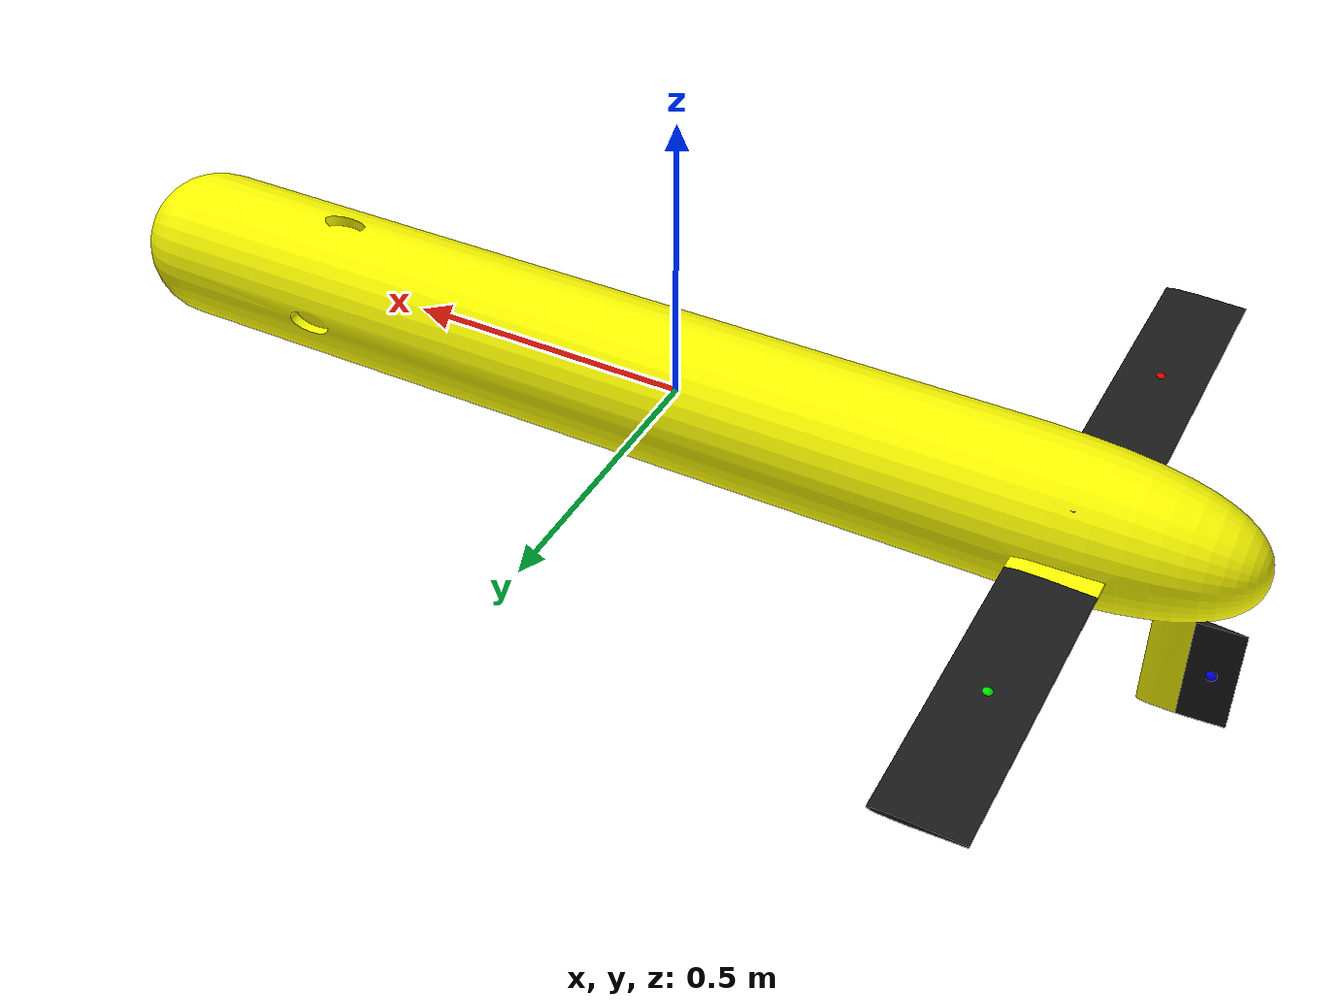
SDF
<?xml version="1.0"?>
<sdf version="1.7">
  <model name="glider_nautilus">

    <static>false</static>

    <!-- BASE LINK -->

    <link name="base_link">
      <inertial>

        <!-- Pose of the Centre of Mass in the NED base_link frame
             This comes from the Technical_Details spreadsheet (22.04.)
             without the contribution from ACU and oil mass -->

        <pose>0.066 0 0.013 0 0 0</pose>

        <inertia>
          <ixx>0.569665165</ixx>
          <ixy>0.014586839</ixy>
          <ixz>-0.135434148</ixz>
          <iyy>7.792</iyy>
          <iyz>0.003389589</iyz>
          <izz>7.738</izz>
        </inertia>

        <fluid_added_mass>
          <xx>5.30023995</xx>
          <yy>98.529516</yy>
          <zz>110.543023</zz>
          <pp>1.46943124</pp>
          <qq>20.2676439</qq>
          <rr>16.1139805</rr>
        </fluid_added_mass>

        <!-- Mass from the Technical_Details spreadsheet
             This does not include:
             * Movable ACU masses
             * Oil mass -->

        <mass>44.637</mass>

      </inertial>

      <visual name="base_link_visual">
        <pose>0 0 0 0 0 0</pose>
        <geometry>
          <mesh>
            <uri>model://meshes/glider_nautilus/nautilus_glider_nw_v04.dae</uri>
          </mesh>
        </geometry>
        <material>
          <ambient>0.7 0. 0 0.5</ambient>
          <diffuse>1 1 0 1</diffuse>
          <specular>0.7 0.7 0 0.5</specular>
        </material>
      </visual>

      <collision name="base_link_collision">
        <pose>0.0 0 0 0 0 0</pose>
        <geometry>
          <box>
            <!-- x y and z dimensions of the box (refers to base_link coordinates) -->
            <size>1.007723 0.232517 0.232517</size>
          </box>
        </geometry>
      </collision>

      <!-- Box visualising where the bouyant volume of the
           hull is. Not functional, simply an optional sanity check.
           Uncomment to show. -->

    </link>

    <plugin
      filename="gz-sim-hydrodynamics-system"
      name="gz::sim::systems::Hydrodynamics">
      <link_name>base_link</link_name>
      <water_density>1025.0</water_density>
      <!-- Added mass -->
      <xDotU>0</xDotU>
      <yDotV>0</yDotV>
      <zDotW>0</zDotW>
      <kDotP>0</kDotP>
      <mDotQ>0</mDotQ>
      <nDotR>0</nDotR>

      <!-- Linear Drag Coefficients -->
      <!-- diagonal terms -->
      <xU>-108</xU>
      <yV>-8</yV>
      <zW>-162</zW>
      <kP>-13</kP>
      <mQ>-32</mQ>
      <nR>-20</nR>
      <!-- cross terms -->

      <!-- Quadratic Drag Coefficients -->
      <xUabsU>0</xUabsU>
      <yVabsV>0</yVabsV>
      <zWabsW>0</zWabsW>
      <kPabsP>0</kPabsP>
      <mQabsQ>0</mQabsQ>
      <nRabsR>0</nRabsR>
    </plugin>

    <!-- TRIMMING BOW -->

    <!-- A rigidly attached link providing the additional buoyancy
         or mass needed to make the glider float correctly -->

    <joint name="trimming_bow_joint" type="fixed">
      <pose>0.65 0 0 0 0 0</pose>
      <parent>base_link</parent>
      <child>trimming_bow</child>0 0 0
    </joint>

    <link name="trimming_bow">

      <pose>0.65 0 0 0 0 0</pose>

      <collision name="bow_trimming_foam_collision">
        <pose>0 0 0 0 0 0</pose>
        <geometry>
          <box>
            <size>0.065 0.18 0.18</size>
          </box>
        </geometry>
      </collision>

      <visual name="bow_trimming_foam_visual">
        <geometry>
          <box>
            <size>0.065 0.15 0.15</size>
          </box>
        </geometry>
        <material>
          <ambient>0 0 1 0.8</ambient>
          <diffuse>0 0 1 0.8</diffuse>
          <specular>0 0 1 0.8</specular>
        </material>
      </visual>

    </link>

    <!-- TRIMMING STERN -->

    <!-- A rigidly attached link providing the additional buoyancy
         or mass needed to make the glider float correctly. Uncomment
         and add mass / a collision geometry to activate. -->

    <joint name="trimming_stern_joint" type="fixed">
      <pose>-0.7 0 0 0 0 0</pose>
      <parent>base_link</parent>
      <child>trimming_stern</child>
    </joint>

    <link name="trimming_stern">

      <collision name="stern_trimming_foam_collision">
        <geometry>
          <box>
            <size>0.015 0.18 0.18</size>
          </box>
        </geometry>
      </collision>

      <pose>-0.7 0 0 0 0 0</pose>

      <inertial>
        <mass>0.01</mass>
      </inertial>

      <visual name="stern_trimming_foam_visual">
        <geometry>
          <box>
            <size>0.015 0.18 0.18</size>
          </box>
        </geometry>
        <material>
          <ambient>0 0 1 0.8</ambient>
          <diffuse>0 0 1 0.8</diffuse>
          <specular>0 0 1 0.8</specular>
        </material>
      </visual>

    </link>

    <!-- LEFT FIN -->

    <link name="LeftFin_link">
      <!-- Frame for aerodynamic forces of left wing.
           For now simply rest at base link -->

      <visual name="LeftFin_visual">
        <pose>0 0 0 0 0 0</pose>
        <geometry>
          <mesh>
            <uri>model://meshes/glider_nautilus/nautilus_glider_wing_l_v04.dae</uri>
          </mesh>
        </geometry>
        <material>
          <ambient>0.1 0.1 0.1 0.9</ambient>
          <diffuse>0.1 0.1 0.1 1</diffuse>
          <specular>0 0 0 0.9</specular>
        </material>
      </visual>

      <!-- The following visual element is for a sanity check on the
           centre of pressure passed to the lift drag plugin. Insert
           the same position in the pose tag. -->
      <visual name="centre_of_pressure_marker">
        <pose>-0.7 -0.408 0 0 0 0</pose>
        <geometry>
          <sphere>
            <radius>0.01</radius>
          </sphere>
        </geometry>
        <material>
          <ambient>0.9 0 0 0.9</ambient>
          <diffuse>0.9 0 0 0.9</diffuse>
          <specular>0 0 0 0.9</specular>
        </material>
      </visual>

    </link>

    <joint name="LeftFin_joint" type="fixed">
      <pose>0 0 0 0 0 0</pose>
      <parent>base_link</parent>
      <child>LeftFin_link</child>
    </joint>

    <plugin
      filename="gz-sim-lift-drag-system"
      name="gz::sim::systems::LiftDrag">
      <air_density>1025</air_density>
      <cla>4.13</cla>
      <cla_stall>-1.1</cla_stall>
      <cda>0.2</cda>
      <cda_stall>0.03</cda_stall>
      <alpha_stall>0.17</alpha_stall>
      <a0>0</a0>
      <area>0.0725</area>
      <upward>0 0 -1</upward>
      <forward>1 0 0</forward>
      <link_name>LeftFin_link</link_name>
      <!-- cp determines the centre of pressure in the link frame,
           i.e. wher the aerodynamic forces are applied -->
      <cp>-0.7 -0.408 0</cp>
    </plugin>

    <!-- RIGHT FIN -->

    <link name="RightFin_link">

      <visual name="RightFin_visual">
        <pose>0 0 0 0 0 0</pose>
        <geometry>
          <mesh>
            <uri>model://meshes/glider_nautilus/nautilus_glider_wing_r_v04.dae</uri>
          </mesh>
        </geometry>
        <material>
          <ambient>0.1 0.1 0.1 0.9</ambient>
          <diffuse>0.1 0.1 0.1 1</diffuse>
          <specular>0 0 0 0.9</specular>
        </material>
      </visual>

      <!-- The following visual element is for a sanity check on the
           centre of pressure passed to the lift drag plugin. Insert
           the same position in the pose tag. -->
      <visual name="centre_of_pressure_marker">
        <pose>-0.7 0.408  0 0 0 0</pose>
        <geometry>
          <sphere>
            <radius>0.01</radius>
          </sphere>
        </geometry>
        <material>
          <ambient>0 0.9 0 0.9</ambient>
          <diffuse>0 0.9 0 0.9</diffuse>
          <specular>0 0 0 0.9</specular>
        </material>
      </visual>

    </link>

    <joint name="RightFin_joint" type="fixed">
      <pose>0 0 0 0 0 0</pose>
      <parent>base_link</parent>
      <child>RightFin_link</child>
    </joint>

    <plugin
      filename="gz-sim-lift-drag-system"
      name="gz::sim::systems::LiftDrag">
      <air_density>1025</air_density>
      <cla>4.13</cla>
      <cla_stall>-1.1</cla_stall>
      <cda>0.2</cda>
      <cda_stall>0.03</cda_stall>
      <alpha_stall>0.17</alpha_stall>
      <a0>0</a0>
      <area>0.0725</area>
      <upward>0 0 -1</upward>
      <forward>1 0 0</forward>
      <link_name>RightFin_link</link_name>
      <!-- cp determines the centre of pressure in the link frame,
           i.e. wher the aerodynamic forces are applied -->
      <cp>-0.7 0.408  0</cp>
    </plugin>

    <!-- TOP RUDDER -->

    <!-- Top rudder should be movable. First define this joint that
         the rudder's axis of rotation passes through -->

    <joint name="TopRudder_joint" type="fixed">
      <pose relative_to="base_link">-0.899156 0 -0.119 0 0 0</pose>
      <parent>base_link</parent>
      <child>TopRudder_link</child>
    </joint>

    <link name="TopRudder_link">

      <!-- Link (ie rudder body) has its coordinate system right
           on the rudder joint -->

      <pose relative_to="TopRudder_joint">0 0 0 0 0 0</pose>

      <!-- Integrates the mesh files of the rudder -->
      <visual name="Rudder_visual">
        <geometry>
          <mesh>
            <uri>model://meshes/glider_nautilus/nautilus_glider_rudder_v05.dae</uri>
          </mesh>
        </geometry>
        <material>
          <ambient>0.1 0.1 0.1 0.9</ambient>
          <diffuse>0.1 0.1 0.1 1</diffuse>
          <specular>0 0 0 0.9</specular>
        </material>
      </visual>

      <!-- The following visual element is for a sanity check on the
           centre of pressure passed to the lift drag plugin. Insert
           the same position in the pose tag. -->
      <visual name="centre_of_pressure_marker">
        <!-- Pose of the 'centre of pressure' in the local coordinates
             of the TopRudder_link, also a NED coordinate system -->
        <pose relative_to="TopRudder_link">-0.04 0 -0.1 0 0 0</pose>
        <geometry>
          <sphere>
            <radius>0.01</radius>
          </sphere>
        </geometry>
        <material>
          <ambient>0 0 0.9 0.9</ambient>
          <diffuse>0 0 0.9 0.9</diffuse>
          <specular>0 0 0 0.9</specular>
        </material>
      </visual>

    </link>

    <!-- Started to implement a movable rudder -->

    <!-- 0.5 was the initial set point of the PID position
     controller for the rudder -->

    <plugin
      filename="gz-sim-joint-state-publisher-system"
      name="gz::sim::systems::JointStatePublisher">
      <joint_name>TopRudder_joint</joint_name>
      <update_rate>2</update_rate>
    </plugin>

    <plugin
      filename="gz-sim-lift-drag-system"
      name="gz::sim::systems::LiftDrag">
      <air_density>1025</air_density>
      <cla>4.13</cla>
      <cla_stall>-1.1</cla_stall>
      <cda>0.2</cda>
      <cda_stall>0.03</cda_stall>
      <alpha_stall>0.17</alpha_stall>
      <a0>0</a0>
      <area>0.0244</area>
      <upward>0 1 0</upward>
      <forward>1 0 0</forward>
      <link_name>TopRudder_link</link_name>
      <cp>-0.04 0 -0.1</cp>
    </plugin>

    <!-- BLADDER -->

    <link name="bladder_link">
      <!-- Pose of bladder link in base link frame-->
      <pose>0.6 0 0 0 0 0</pose>
      <visual name="bladder_link_visual">
        <geometry>
          <sphere>
            <radius>0.05</radius>
          </sphere>
        </geometry>
        <material>
          <ambient>0 0 1 1</ambient>
          <diffuse>0 0 1 0.5</diffuse>
          <specular>0 0 1 0.5</specular>
        </material>
      </visual>
    </link>

    <joint name="bladder_joint" type="fixed">
      <pose>0 0 0 0 0 0</pose>
      <parent>base_link</parent>
      <child>bladder_link</child>
    </joint>

    <!-- OIL MASS -->

    <link name="oil_weight_link">
      <!--Oil positioned in the middle between the
      tank and the bladder. Static. Position in base_link coord-->
      <pose>0.4125 0 0.018 0 0 0</pose>
      <visual name="oil_weight_marker">
        <pose>0 0 0 0 0 0</pose>
        <geometry>
          <sphere>
            <radius>0.01</radius>
          </sphere>
        </geometry>
      </visual>
      <inertial>
        <mass>2.1825</mass>
      </inertial>
    </link>

    <joint name="oil_weigth_joint" type="fixed">
      <pose>0 0 0 0 0 0</pose>
      <parent>base_link</parent>
      <child>oil_weight_link</child>
    </joint>

    <plugin
      filename="gz-sim-buoyancy-engine-system"
      name="gz::sim::systems::BuoyancyEngine">
      <link_name>bladder_link</link_name>
      <max_inflation_rate>0.0001</max_inflation_rate>
      <min_volume>0.0</min_volume>
      <max_volume>0.0025</max_volume>engine
      <neutral_volume>0.0</neutral_volume>
      <default_volume>0.00125</default_volume>
      <fluid_density>1025.0</fluid_density>
      <surface>0</surface>
      <namespace>glider_nautilus</namespace>
    </plugin>

    <!-- IMU -->

    <link name="imu_link">
      <inertial>
        <pose>0 0 0 0 0 0</pose>
        <inertia>
          <ixx>0.00001</ixx>
          <ixy>0.0</ixy>
          <ixz>0.0</ixz>
          <iyy>0.00001</iyy>
          <iyz>0.0</iyz>
          <izz>0.00001</izz>
        </inertia>
      </inertial>
      <sensor name="imu_sensor" type="imu">
        <always_on>true</always_on>
        <update_rate>50.0</update_rate>
        <topic>/model/glider_nautilus/imu</topic>
      </sensor>
    </link>

    <joint name="imu_joint" type="fixed">
      <pose>0 0 0 0 0 0</pose>
      <parent>base_link</parent>
      <child>imu_link</child>
    </joint>

    <plugin
      filename="gz-sim-imu-system"
      name="gz::sim::systems::Imu">
    </plugin>

    <!-- BATTERY -->

    <link name='battery_link'>
      <!-- Inertial properties of static battery accounted for in the
           inertial properties of the base link  -->
      <battery name='battery'>
        <voltage>4.2</voltage>
      </battery>
    </link>

    <joint name='battery_joint' type='fixed'>
      <pose>0 0 0 0 0 0</pose>
      <parent>base_link</parent>
      <child>battery_link</child>
    </joint>

    <!-- ACU -->

    <!-- PITCH ACU -->

    <link name='acu_tilt_link'>

      <!-- Pitch ACU weight starts in the middle -->
      <pose>-0.32525 0 -0.0438 0 0 0</pose>

      <inertial>
        <mass>1.83</mass>
        <inertia>
          <ixx>0.05</ixx>
          <ixy>0</ixy>
          <ixz>0</ixz>
          <iyy>0.05</iyy>
          <iyz>0</iyz>
          <izz>0.05</izz>
        </inertia>
      </inertial>

      <!-- Marker for debugging pitch ACU mass position -->
      <visual name="CM_pitch_ACU_marker">
        <geometry>
          <sphere>
            <radius>0.01</radius>
          </sphere>
        </geometry>
        <material>
          <ambient>0.9 0 0 0.9</ambient>
          <diffuse>0.9 0 0 0.9</diffuse>
          <specular>0 0 0 0.9</specular>
        </material>
      </visual>
    </link>

    <joint name='acu_tilt_joint' type='prismatic'>
      <!-- Updated according to spreadsheet on 22.04. -->
      <pose>-0.385 0 -0.0438 0 0 0</pose>
      <parent>base_link</parent>
      <child>acu_tilt_link</child>
      <axis>
        <xyz>1 0 0</xyz>
        <limit>
          <lower>-0.1195</lower> <!-- Minimum position (in meters) -->
          <upper>0</upper>       <!-- Maximum position (in meters) -->
          <effort>10000.0</effort> <!-- Maximum effort (optional, in newton-meters) -->
          <velocity>0.011</velocity> <!-- Maximum velocity (optional, in meters/second) -->
        </limit>
      </axis>
    </joint>

    <!-- ROLL ACU -->

    <link name='acu_roll_link'>
      <pose>-0.428 0 0.034 0 0 0</pose>

      <inertial>
        <!-- Pose of the centre of mass relative to the pivot.
             From Onshape 22.04. -->
        <pose>0 0 0.027 0 0 0</pose>
        <!-- Mass of roll weight from spreadsheet as of 22.04. -->
        <mass>4.069</mass>
        <inertia>
          <ixx>0.05</ixx>
          <ixy>0</ixy>
          <ixz>0</ixz>
          <iyy>0.05</iyy>
          <iyz>0</iyz>
          <izz>0.05</izz>
        </inertia>
      </inertial>
      <battery name='battery_acu_roll'>
        <voltage>4.2</voltage>
      </battery>

      <!-- Marker for debugging roll ACU mass position -->
      <visual name="CM_roll_ACU_marker">
        <pose>0 0 0.027 0 0 0</pose>
        <geometry>
          <sphere>
            <radius>0.01</radius>
          </sphere>
        </geometry>
        <material>
          <ambient>0.9 0 0 0.9</ambient>
          <diffuse>0.9 0 0 0.9</diffuse>
          <specular>0 0 0 0.9</specular>
        </material>
      </visual>

    </link>

    <joint name='acu_roll_joint' type='revolute'>
      <!-- Updated according to spreadsheet on 22.04. -->
      <pose>-0.428 0 0.034 0 0 0</pose> <!--Where the pivot is-->
      <parent>base_link</parent>
      <child>acu_roll_link</child>
      <axis>
        <xyz>1 0 0</xyz>
        <limit>
          <lower>-0.5236</lower> <!-- Minimum position (in radians) -->
          <upper>0.5236</upper>  <!-- Maximum position (in radians) -->
          <effort>10000.0</effort> <!-- Maximum effort (optional, in newton-meters) -->
          <velocity>0.022</velocity> <!-- Maximum velocity (optional, in meters/second) -->
        </limit>
      </axis>
    </joint>

    <plugin
      filename="gz-sim-joint-position-controller-system"
      name="gz::sim::systems::JointPositionController">
      <joint_name>acu_tilt_joint</joint_name>
      <topic>/model/glider_nautilus/joint/acu_tilt_joint/cmd_pos</topic>
      <p_gain>30000</p_gain>
      <i_gain>0</i_gain>
      <d_gain>3000</d_gain>
      <cmd_max>10000</cmd_max>
      <cmd_min>-10000</cmd_min>
    </plugin>

    <plugin
      filename="gz-sim-joint-position-controller-system"
      name="gz::sim::systems::JointPositionController">
      <joint_name>acu_roll_joint</joint_name>
      <topic>/model/glider_nautilus/joint/acu_roll_joint/cmd_pos</topic>
      <p_gain>50</p_gain>
      <i_gain>0</i_gain>
      <d_gain>5</d_gain>
      <cmd_max>10000</cmd_max>
      <cmd_min>-10000</cmd_min>
    </plugin>

    <plugin
      filename="gz-sim-linearbatteryplugin-system"
      name="gz::sim::systems::LinearBatteryPlugin">
      <battery_name>battery</battery_name>
      <voltage>4.2</voltage>
      <open_circuit_voltage_constant_coef>3.7</open_circuit_voltage_constant_coef>
      <open_circuit_voltage_linear_coef>-3.1424</open_circuit_voltage_linear_coef>
      <initial_charge>4.32</initial_charge>
      <capacity>4.8</capacity>
      <resistance>0.002</resistance>
      <smooth_current_tau>1.9499</smooth_current_tau>
      <enable_recharge>false</enable_recharge>
      <power_load>10</power_load>
      <start_on_motion>true</start_on_motion>
    </plugin>

    <!-- NAVSAT -->

    <link name="navsat_link">
      <inertial>
        <pose>0 0 0 0 0 0</pose>
        <mass>0.001</mass>
        <inertia>
          <ixx>0.00001</ixx>
          <ixy>0.0</ixy>
          <ixz>0.0</ixz>
          <iyy>0.00001</iyy>
          <iyz>0.0</iyz>
          <izz>0.00001</izz>
        </inertia>
      </inertial>

      <sensor name="navsat_sensor" type="navsat">
        <always_on>true</always_on>
        <update_rate>30.0</update_rate>
        <topic>/model/glider_nautilus/navsat</topic>
      </sensor>
    </link>

    <joint name="navsat_joint" type="fixed">
      <pose>0 0 0 0 0 0</pose>
      <parent>base_link</parent>
      <child>navsat_link</child>
    </joint>

    <plugin
      filename="gz-sim-navsat-system"
      name="gz::sim::systems::NavSat">
    </plugin>

    <!-- OTHER PLUGINS -->

    <plugin
      filename="gz-sim-odometry-publisher-system"
      name="gz::sim::systems::OdometryPublisher">
      <odom_frame>map</odom_frame>
      <robot_base_frame>base_link</robot_base_frame>
      <dimensions>3</dimensions>
      <odom_publish_frequency>100</odom_publish_frequency>
    </plugin>

    <plugin
      filename="gz-sim-joint-state-publisher-system"
      name="gz::sim::systems::JointStatePublisher">
    </plugin>

    <!-- Sea Pressure Sensor Plugin -->
    <plugin
      filename="sea_pressure_sensor"
      name=" dave_gz_sensor_plugins::SubseaPressureSensorPlugin">
      <namespace>glider_nautilus</namespace>
      <topic>sea_pressure</topic>
      <update_rate>10</update_rate>
      <noise_sigma>3.0</noise_sigma>
      <estimate_depth_on>true</estimate_depth_on>
      <standard_pressure>101.325</standard_pressure>
      <kPa_per_meter>9.80638</kPa_per_meter>
    </plugin>

  </model>
</sdf>
